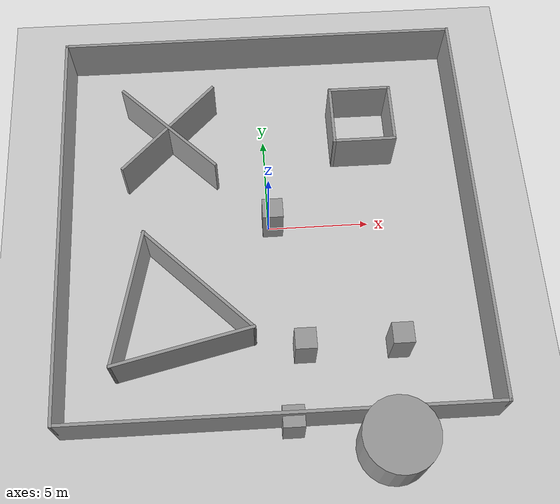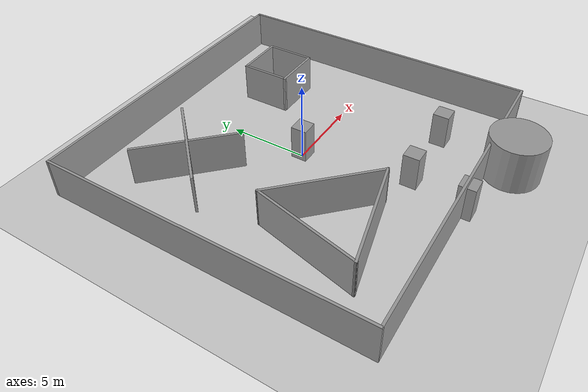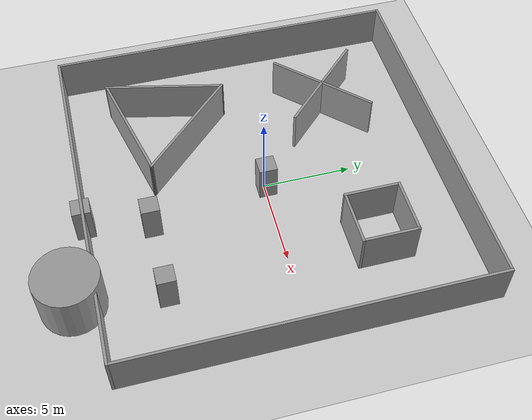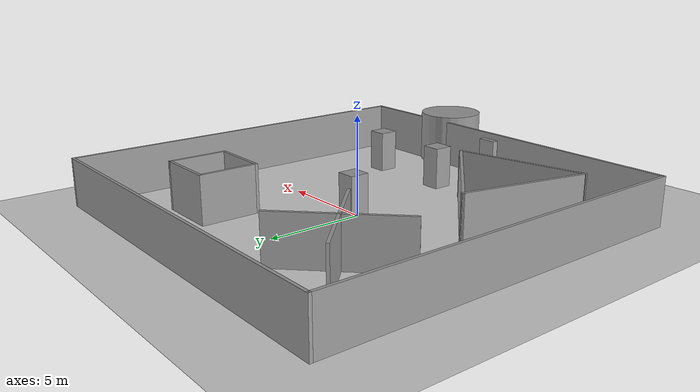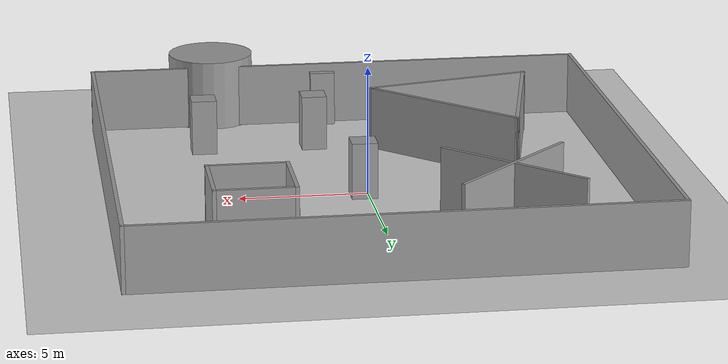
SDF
<sdf version="1.6">
 <world name="default">
  <light name="sun" type="directional">
   <pose>0 0 10 0 -0 0</pose>
   <diffuse>0.8 0.8 0.8 1</diffuse>
   <specular>0.2 0.2 0.2 1</specular>
   <attenuation>
    <range>1000</range>
    <constant>0.9</constant>
    <linear>0.01</linear>
    <quadratic>0.001</quadratic>
   </attenuation>
   <direction>-0.5 0.1 -0.9</direction>
  </light>
  <model name="ground_plane">
   <static>1</static>
   <link name="link">
    <collision name="collision">
     <geometry><plane><normal>0 0 1</normal><size>100 100</size></plane></geometry>
     <surface><friction><ode><mu>100</mu><mu2>50</mu2></ode></friction></surface>
    </collision>
    <visual name="visual">
     <cast_shadows>0</cast_shadows>
     <geometry><plane><normal>0 0 1</normal><size>100 100</size></plane></geometry>
     <material>
      <script><uri>file://media/materials/scripts/gazebo.material</uri><name>Gazebo/Grey</name></script>
     </material>
    </visual>
   </link>
  </model>
  <gravity>0 0 -9.8</gravity>
  <magnetic_field>6e-06 2.3e-05 -4.2e-05</magnetic_field>
  <atmosphere type="adiabatic"/>
  <physics name="default_physics" default="0" type="ode">
   <max_step_size>0.001</max_step_size>
   <real_time_factor>1</real_time_factor>
   <real_time_update_rate>1000</real_time_update_rate>
  </physics>
  <scene><ambient>0.4 0.4 0.4 1</ambient><background>0.7 0.7 0.7 1</background><shadows>1</shadows></scene>
  <spherical_coordinates>
   <surface_model>EARTH_WGS84</surface_model>
   <latitude_deg>0</latitude_deg>
   <longitude_deg>0</longitude_deg>
   <elevation>0</elevation>
   <heading_deg>0</heading_deg>
  </spherical_coordinates>
  <model name="SAC_XSUGV_2">
   <link name="Wall_26">
    <collision name="Wall_26_Collision">
     <geometry><box><size>20.15 0.15 2.5</size></box></geometry>
     <pose>0 0 1.25 0 -0 0</pose>
    </collision>
    <visual name="Wall_26_Visual">
     <pose>0 0 1.25 0 -0 0</pose>
     <geometry><box><size>20.15 0.15 2.5</size></box></geometry>
     <material>
      <script><uri>file://media/materials/scripts/gazebo.material</uri><name>Gazebo/Grey</name></script>
      <ambient>1 1 1 1</ambient>
     </material>
     <meta><layer>0</layer></meta>
    </visual>
    <pose>10 0 0 0 -0 -1.5708</pose>
   </link>
   <link name="Wall_28">
    <collision name="Wall_28_Collision">
     <geometry><box><size>20.15 0.15 2.5</size></box></geometry>
     <pose>0 0 1.25 0 -0 0</pose>
    </collision>
    <visual name="Wall_28_Visual">
     <pose>0 0 1.25 0 -0 0</pose>
     <geometry><box><size>20.15 0.15 2.5</size></box></geometry>
     <material>
      <script><uri>file://media/materials/scripts/gazebo.material</uri><name>Gazebo/Grey</name></script>
      <ambient>1 1 1 1</ambient>
     </material>
     <meta><layer>0</layer></meta>
    </visual>
    <pose>0 10 0 0 -0 3.14159</pose>
   </link>
   <link name="Wall_30">
    <collision name="Wall_30_Collision">
     <geometry><box><size>20.15 0.15 2.5</size></box></geometry>
     <pose>0 0 1.25 0 -0 0</pose>
    </collision>
    <visual name="Wall_30_Visual">
     <pose>0 0 1.25 0 -0 0</pose>
     <geometry><box><size>20.15 0.15 2.5</size></box></geometry>
     <material>
      <script><uri>file://media/materials/scripts/gazebo.material</uri><name>Gazebo/Grey</name></script>
      <ambient>1 1 1 1</ambient>
     </material>
     <meta><layer>0</layer></meta>
    </visual>
    <pose>-10 0 0 0 -0 -1.5708</pose>
   </link>
   <link name="Wall_32">
    <collision name="Wall_32_Collision">
     <geometry><box><size>20.15 0.15 2.5</size></box></geometry>
     <pose>0 0 1.25 0 -0 0</pose>
    </collision>
    <visual name="Wall_32_Visual">
     <pose>0 0 1.25 0 -0 0</pose>
     <geometry><box><size>20.15 0.15 2.5</size></box></geometry>
     <material>
      <script><uri>file://media/materials/scripts/gazebo.material</uri><name>Gazebo/Grey</name></script>
      <ambient>1 1 1 1</ambient>
     </material>
     <meta><layer>0</layer></meta>
    </visual>
    <pose>0 -10 0 0 -0 0</pose>
   </link>
   <link name="Wall_34">
    <collision name="Wall_34_Collision">
     <geometry><box><size>3.15 0.15 2.5</size></box></geometry>
     <pose>0 0 1.25 0 -0 0</pose>
    </collision>
    <visual name="Wall_34_Visual">
     <pose>0 0 1.25 0 -0 0</pose>
     <geometry><box><size>3.15 0.15 2.5</size></box></geometry>
     <material>
      <script><uri>file://media/materials/scripts/gazebo.material</uri><name>Gazebo/Grey</name></script>
      <ambient>1 1 1 1</ambient>
     </material>
     <meta><layer>0</layer></meta>
    </visual>
    <pose>3.5 5 0 0 -0 1.5708</pose>
   </link>
   <link name="Wall_35">
    <collision name="Wall_35_Collision">
     <geometry><box><size>3.15 0.15 2.5</size></box></geometry>
     <pose>0 0 1.25 0 -0 0</pose>
    </collision>
    <visual name="Wall_35_Visual">
     <pose>0 0 1.25 0 -0 0</pose>
     <geometry><box><size>3.15 0.15 2.5</size></box></geometry>
     <material>
      <script><uri>file://media/materials/scripts/gazebo.material</uri><name>Gazebo/Grey</name></script>
      <ambient>1 1 1 1</ambient>
     </material>
     <meta><layer>0</layer></meta>
    </visual>
    <pose>5 6.5 0 0 -0 0</pose>
   </link>
   <link name="Wall_36">
    <collision name="Wall_36_Collision">
     <geometry><box><size>3.15 0.15 2.5</size></box></geometry>
     <pose>0 0 1.25 0 -0 0</pose>
    </collision>
    <visual name="Wall_36_Visual">
     <pose>0 0 1.25 0 -0 0</pose>
     <geometry><box><size>3.15 0.15 2.5</size></box></geometry>
     <material>
      <script><uri>file://media/materials/scripts/gazebo.material</uri><name>Gazebo/Grey</name></script>
      <ambient>1 1 1 1</ambient>
     </material>
     <meta><layer>0</layer></meta>
    </visual>
    <pose>6.5 5 0 0 -0 -1.5708</pose>
   </link>
   <link name="Wall_37">
    <collision name="Wall_37_Collision">
     <geometry><box><size>3.15 0.15 2.5</size></box></geometry>
     <pose>0 0 1.25 0 -0 0</pose>
    </collision>
    <visual name="Wall_37_Visual">
     <pose>0 0 1.25 0 -0 0</pose>
     <geometry><box><size>3.15 0.15 2.5</size></box></geometry>
     <material>
      <script><uri>file://media/materials/scripts/gazebo.material</uri><name>Gazebo/Grey</name></script>
      <ambient>1 1 1 1</ambient>
     </material>
     <meta><layer>0</layer></meta>
    </visual>
    <pose>5 3.5 0 0 -0 3.14159</pose>
   </link>
   <link name="Wall_39">
    <collision name="Wall_39_Collision">
     <geometry><box><size>6.51396 0.15 2.5</size></box></geometry>
     <pose>0 0 1.25 0 -0 0</pose>
    </collision>
    <visual name="Wall_39_Visual">
     <pose>0 0 1.25 0 -0 0</pose>
     <geometry><box><size>6.51396 0.15 2.5</size></box></geometry>
     <material>
      <script><uri>file://media/materials/scripts/gazebo.material</uri><name>Gazebo/Grey</name></script>
      <ambient>1 1 1 1</ambient>
     </material>
     <meta><layer>0</layer></meta>
    </visual>
    <pose>-4.75 4.75 0 0 -0 -0.785398</pose>
   </link>
   <link name="Wall_42">
    <collision name="Wall_42_Collision">
     <geometry><box><size>6.51396 0.15 2.5</size></box></geometry>
     <pose>0 0 1.25 0 -0 0</pose>
    </collision>
    <visual name="Wall_42_Visual">
     <pose>0 0 1.25 0 -0 0</pose>
     <geometry><box><size>6.51396 0.15 2.5</size></box></geometry>
     <material>
      <script><uri>file://media/materials/scripts/gazebo.material</uri><name>Gazebo/Grey</name></script>
      <ambient>1 1 1 1</ambient>
     </material>
     <meta><layer>0</layer></meta>
    </visual>
    <pose>-4.75 4.75 0 0 -0 -2.35619</pose>
   </link>
   <link name="Wall_44">
    <collision name="Wall_44_Collision">
     <geometry><box><size>7.22107 0.15 2.5</size></box></geometry>
     <pose>0 0 1.25 0 -0 0</pose>
    </collision>
    <visual name="Wall_44_Visual">
     <pose>0 0 1.25 0 -0 0</pose>
     <geometry><box><size>7.22107 0.15 2.5</size></box></geometry>
     <material>
      <script><uri>file://media/materials/scripts/gazebo.material</uri><name>Gazebo/Grey</name></script>
      <ambient>1 1 1 1</ambient>
     </material>
     <meta><layer>0</layer></meta>
    </visual>
    <pose>-3.5 -3.5 0 0 -0 -0.785398</pose>
   </link>
   <link name="Wall_45">
    <collision name="Wall_45_Collision">
     <geometry><box><size>6.82083 0.15 2.5</size></box></geometry>
     <pose>0 0 1.25 0 -0 0</pose>
    </collision>
    <visual name="Wall_45_Visual">
     <pose>0 0 1.25 0 -0 0</pose>
     <geometry><box><size>6.82083 0.15 2.5</size></box></geometry>
     <material>
      <script><uri>file://media/materials/scripts/gazebo.material</uri><name>Gazebo/Grey</name></script>
      <ambient>1 1 1 1</ambient>
     </material>
     <meta><layer>0</layer></meta>
    </visual>
    <pose>-4.25 -6.75 0 0 -0 -2.91479</pose>
   </link>
   <link name="Wall_46">
    <collision name="Wall_46_Collision">
     <geometry><box><size>6.82083 0.15 2.5</size></box></geometry>
     <pose>0 0 1.25 0 -0 0</pose>
    </collision>
    <visual name="Wall_46_Visual">
     <pose>0 0 1.25 0 -0 0</pose>
     <geometry><box><size>6.82083 0.15 2.5</size></box></geometry>
     <material>
      <script><uri>file://media/materials/scripts/gazebo.material</uri><name>Gazebo/Grey</name></script>
      <ambient>1 1 1 1</ambient>
     </material>
     <meta><layer>0</layer></meta>
    </visual>
    <pose>-6.75 -4.25 0 0 -0 1.344</pose>
   </link>
   <static>1</static>
  </model>
  <model name="box_world">
   <link name="link_1">
    <inertial>
     <mass>46.377</mass>
     <inertia><ixx>92.8557</ixx><ixy>0</ixy><ixz>0</ixz><iyy>92.8557</iyy><iyz>0</iyz><izz>69.2631</izz></inertia>
    </inertial>
    <pose>2.00785 -4.27724 -0.612651 0 -0 0</pose>
    <visual name="visual">
     <geometry><cylinder><radius>1.72828</radius><length>3.88142</length></cylinder></geometry>
     <material>
      <lighting>1</lighting>
      <script><uri>file://media/materials/scripts/gazebo.material</uri><name>Gazebo/Grey</name></script>
      <shader type="pixel"/>
     </material>
    </visual>
    <collision name="collision">
     <geometry><cylinder><radius>1.72828</radius><length>3.88142</length></cylinder></geometry>
     <surface>
      <friction>
       <ode><mu>1</mu><mu2>1</mu2><fdir1>0 0 0</fdir1><slip1>0</slip1><slip2>0</slip2></ode>
       <torsional>
        <coefficient>1</coefficient>
        <patch_radius>0</patch_radius>
        <surface_radius>0</surface_radius>
        <use_patch_radius>1</use_patch_radius>
        <ode><slip>0</slip></ode>
       </torsional>
      </friction>
      <bounce><restitution_coefficient>0</restitution_coefficient><threshold>1e+06</threshold></bounce>
      <contact>
       <collide_without_contact>0</collide_without_contact>
       <collide_without_contact_bitmask>1</collide_without_contact_bitmask>
       <collide_bitmask>1</collide_bitmask>
       <ode>
        <soft_cfm>0</soft_cfm>
        <soft_erp>0.2</soft_erp>
        <kp>1e+13</kp>
        <kd>1</kd>
        <max_vel>0.01</max_vel>
        <min_depth>0</min_depth>
       </ode>
       <bullet>
        <split_impulse>1</split_impulse>
        <split_impulse_penetration_threshold>-0.01</split_impulse_penetration_threshold>
        <soft_cfm>0</soft_cfm>
        <soft_erp>0.2</soft_erp>
        <kp>1e+13</kp>
        <kd>1</kd>
       </bullet>
      </contact>
     </surface>
    </collision>
   </link>
   <link name="link_3">
    <inertial>
     <mass>3.34675</mass>
     <inertia><ixx>3.4028</ixx><ixy>0</ixy><ixz>0</ixz><iyy>3.4028</iyy><iyz>0</iyz><izz>0.557792</izz></inertia>
    </inertial>
    <pose>-1.71747 0.423374 -0.95487 0 -0 0</pose>
    <visual name="visual">
     <geometry><box><size>1 1 3.34679</size></box></geometry>
     <material>
      <lighting>1</lighting>
      <script><uri>file://media/materials/scripts/gazebo.material</uri><name>Gazebo/Grey</name></script>
      <shader type="pixel"/>
     </material>
    </visual>
    <collision name="collision">
     <geometry><box><size>1 1 3.34679</size></box></geometry>
     <surface>
      <friction>
       <ode><mu>1</mu><mu2>1</mu2><fdir1>0 0 0</fdir1><slip1>0</slip1><slip2>0</slip2></ode>
       <torsional>
        <coefficient>1</coefficient>
        <patch_radius>0</patch_radius>
        <surface_radius>0</surface_radius>
        <use_patch_radius>1</use_patch_radius>
        <ode><slip>0</slip></ode>
       </torsional>
      </friction>
      <bounce><restitution_coefficient>0</restitution_coefficient><threshold>1e+06</threshold></bounce>
      <contact>
       <collide_without_contact>0</collide_without_contact>
       <collide_without_contact_bitmask>1</collide_without_contact_bitmask>
       <collide_bitmask>1</collide_bitmask>
       <ode>
        <soft_cfm>0</soft_cfm>
        <soft_erp>0.2</soft_erp>
        <kp>1e+13</kp>
        <kd>1</kd>
        <max_vel>0.01</max_vel>
        <min_depth>0</min_depth>
       </ode>
       <bullet>
        <split_impulse>1</split_impulse>
        <split_impulse_penetration_threshold>-0.01</split_impulse_penetration_threshold>
        <soft_cfm>0</soft_cfm>
        <soft_erp>0.2</soft_erp>
        <kp>1e+13</kp>
        <kd>1</kd>
       </bullet>
      </contact>
     </surface>
    </collision>
   </link>
   <link name="link_3_clone">
    <inertial>
     <mass>3.34675</mass>
     <inertia><ixx>3.4028</ixx><ixy>0</ixy><ixz>0</ixz><iyy>3.4028</iyy><iyz>0</iyz><izz>0.557792</izz></inertia>
    </inertial>
    <pose>2.72734 0.444061 -0.95487 0 -0 0</pose>
    <visual name="visual">
     <geometry><box><size>1 1 3.34679</size></box></geometry>
     <material>
      <lighting>1</lighting>
      <script><uri>file://media/materials/scripts/gazebo.material</uri><name>Gazebo/Grey</name></script>
      <shader type="pixel"/>
     </material>
    </visual>
    <collision name="collision">
     <geometry><box><size>1 1 3.34679</size></box></geometry>
     <surface>
      <friction>
       <ode><mu>1</mu><mu2>1</mu2><fdir1>0 0 0</fdir1><slip1>0</slip1><slip2>0</slip2></ode>
       <torsional>
        <coefficient>1</coefficient>
        <patch_radius>0</patch_radius>
        <surface_radius>0</surface_radius>
        <use_patch_radius>1</use_patch_radius>
        <ode><slip>0</slip></ode>
       </torsional>
      </friction>
      <bounce><restitution_coefficient>0</restitution_coefficient><threshold>1e+06</threshold></bounce>
      <contact>
       <collide_without_contact>0</collide_without_contact>
       <collide_without_contact_bitmask>1</collide_without_contact_bitmask>
       <collide_bitmask>1</collide_bitmask>
       <ode>
        <soft_cfm>0</soft_cfm>
        <soft_erp>0.2</soft_erp>
        <kp>1e+13</kp>
        <kd>1</kd>
        <max_vel>0.01</max_vel>
        <min_depth>0</min_depth>
       </ode>
       <bullet>
        <split_impulse>1</split_impulse>
        <split_impulse_penetration_threshold>-0.01</split_impulse_penetration_threshold>
        <soft_cfm>0</soft_cfm>
        <soft_erp>0.2</soft_erp>
        <kp>1e+13</kp>
        <kd>1</kd>
       </bullet>
      </contact>
     </surface>
    </collision>
   </link>
   <link name="link_3_clone_0">
    <inertial>
     <mass>3.34675</mass>
     <inertia><ixx>3.4028</ixx><ixy>0</ixy><ixz>0</ixz><iyy>3.4028</iyy><iyz>0</iyz><izz>0.557792</izz></inertia>
    </inertial>
    <pose>-2.49908 -3.09221 -0.95487 0 -0 0</pose>
    <visual name="visual">
     <geometry><box><size>1 1 3.34679</size></box></geometry>
     <material>
      <lighting>1</lighting>
      <script><uri>file://media/materials/scripts/gazebo.material</uri><name>Gazebo/Grey</name></script>
      <shader type="pixel"/>
     </material>
    </visual>
    <collision name="collision">
     <geometry><box><size>1 1 3.34679</size></box></geometry>
     <surface>
      <friction>
       <ode><mu>1</mu><mu2>1</mu2><fdir1>0 0 0</fdir1><slip1>0</slip1><slip2>0</slip2></ode>
       <torsional>
        <coefficient>1</coefficient>
        <patch_radius>0</patch_radius>
        <surface_radius>0</surface_radius>
        <use_patch_radius>1</use_patch_radius>
        <ode><slip>0</slip></ode>
       </torsional>
      </friction>
      <bounce><restitution_coefficient>0</restitution_coefficient><threshold>1e+06</threshold></bounce>
      <contact>
       <collide_without_contact>0</collide_without_contact>
       <collide_without_contact_bitmask>1</collide_without_contact_bitmask>
       <collide_bitmask>1</collide_bitmask>
       <ode>
        <soft_cfm>0</soft_cfm>
        <soft_erp>0.2</soft_erp>
        <kp>1e+13</kp>
        <kd>1</kd>
        <max_vel>0.01</max_vel>
        <min_depth>0</min_depth>
       </ode>
       <bullet>
        <split_impulse>1</split_impulse>
        <split_impulse_penetration_threshold>-0.01</split_impulse_penetration_threshold>
        <soft_cfm>0</soft_cfm>
        <soft_erp>0.2</soft_erp>
        <kp>1e+13</kp>
        <kd>1</kd>
       </bullet>
      </contact>
     </surface>
    </collision>
   </link>
   <link name="link_3_clone_1">
    <inertial>
     <mass>3.34675</mass>
     <inertia><ixx>3.4028</ixx><ixy>0</ixy><ixz>0</ixz><iyy>3.4028</iyy><iyz>0</iyz><izz>0.557792</izz></inertia>
    </inertial>
    <pose>-2.83581 7.09083 -0.95487 0 -0 0</pose>
    <visual name="visual">
     <geometry><box><size>1 1 3.34679</size></box></geometry>
     <material>
      <lighting>1</lighting>
      <script><uri>file://media/materials/scripts/gazebo.material</uri><name>Gazebo/Grey</name></script>
      <shader type="pixel"/>
     </material>
    </visual>
    <collision name="collision">
     <geometry><box><size>1 1 3.34679</size></box></geometry>
     <surface>
      <friction>
       <ode><mu>1</mu><mu2>1</mu2><fdir1>0 0 0</fdir1><slip1>0</slip1><slip2>0</slip2></ode>
       <torsional>
        <coefficient>1</coefficient>
        <patch_radius>0</patch_radius>
        <surface_radius>0</surface_radius>
        <use_patch_radius>1</use_patch_radius>
        <ode><slip>0</slip></ode>
       </torsional>
      </friction>
      <bounce><restitution_coefficient>0</restitution_coefficient><threshold>1e+06</threshold></bounce>
      <contact>
       <collide_without_contact>0</collide_without_contact>
       <collide_without_contact_bitmask>1</collide_without_contact_bitmask>
       <collide_bitmask>1</collide_bitmask>
       <ode>
        <soft_cfm>0</soft_cfm>
        <soft_erp>0.2</soft_erp>
        <kp>1e+13</kp>
        <kd>1</kd>
        <max_vel>0.01</max_vel>
        <min_depth>0</min_depth>
       </ode>
       <bullet>
        <split_impulse>1</split_impulse>
        <split_impulse_penetration_threshold>-0.01</split_impulse_penetration_threshold>
        <soft_cfm>0</soft_cfm>
        <soft_erp>0.2</soft_erp>
        <kp>1e+13</kp>
        <kd>1</kd>
       </bullet>
      </contact>
     </surface>
    </collision>
   </link>
   <static>0</static>
   <pose>3.03373 -7 1.45487 0 -0 0</pose>
  </model>
 </world>
</sdf>
